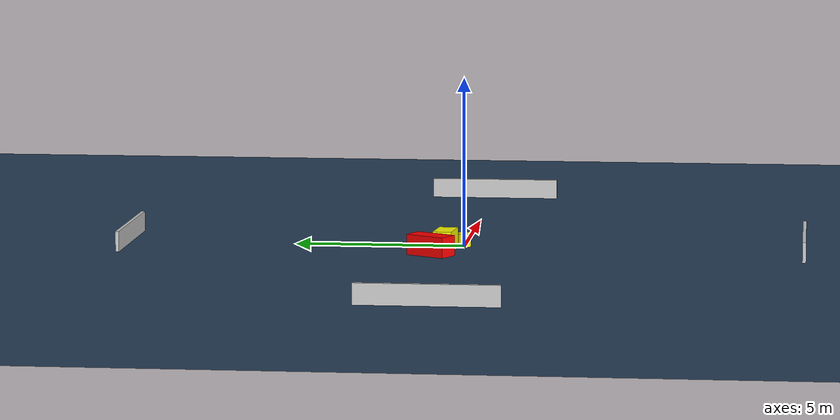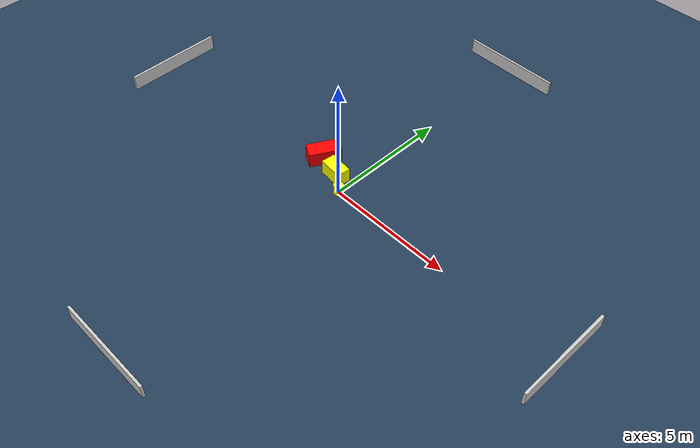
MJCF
<?xml version="1.0" ?>
<mujoco model="generated_environment">
  <option timestep="0.01" integrator="RK4" cone="elliptic"/>
  <default>
    <geom density="1"/>
  </default>
  <asset>
    <texture builtin="gradient" height="3072" name="skybox" rgb1="0.3 0.5 0.7" rgb2="0 0 0" type="skybox" width="512"/>
    <texture builtin="checker" height="300" name="groundplane" rgb1="0.2 0.3 0.4" rgb2="0.1 0.2 0.3" type="2d" width="300"/>
    <material name="groundplane" reflectance="0.2" texrepeat="5 5" texture="groundplane"/>
  </asset>
  <worldbody>
    <light dir="0 0 -1" directional="true" pos="0 0 1.5"/>
    <geom condim="3" friction="0.5 0.005 0.001" material="groundplane" name="floor" pos="0 0 0" size="0 0 0.05" type="plane"/>
    <body name="walls">
      <geom name="wall_1" condim="4" pos="-10.0 0.0 0.3" rgba="0.800000011920929 0.800000011920929 0.800000011920929 1.0" size="0.05 2.0 0.3" type="box"/>
      <geom name="wall_2" condim="4" pos="10.0 0.0 0.3" rgba="0.800000011920929 0.800000011920929 0.800000011920929 1.0" size="0.05 2.0 0.3" type="box"/>
      <geom name="wall_3" condim="4" pos="0.0 -10.0 0.3" rgba="0.800000011920929 0.800000011920929 0.800000011920929 1.0" size="2.0 0.05 0.3" type="box"/>
      <geom name="wall_4" condim="4" pos="0.0 10.0 0.3" rgba="0.800000011920929 0.800000011920929 0.800000011920929 1.0" size="2.0 0.05 0.3" type="box"/>
    </body>
    <body name="robot">
      <joint name="joint_x" type="slide" pos="0 0 0" axis="1 0 0"/>
      <joint name="joint_y" type="slide" pos="0 0 0" axis="0 1 0"/>
      <geom name="robot" type="cylinder" pos="0.0 0.0 0.2" size="0.2 0.2 0.0" mass="5.0" friction="1.0 0.005 0.0001" condim="4" rgba="1.0 1.0 0.0 1.0"/>
    </body>
    <body name="obstacle_1_movable">
      <geom name="obstacle_1_movable" condim="4" pos="-0.6556167652138165 0.4886625607033393 0.3" euler="0 0 353.8495763715417" friction="0.0 0.005 0.001" rgba="1.0 1.0 0.0 1.0" size="0.4806943510247477 0.2760141707695481 0.3" type="box" mass="0.1"/>
      <joint type="free"/>
    </body>
    <body name="obstacle_2_static">
      <geom name="obstacle_2_static" condim="4" pos="-1.6582161718289496 0.8186802253145475 0.3" euler="0 0 241.47044815502838" friction="0.0 0.005 0.001" rgba="1.0 0.0 0.0 1.0" size="0.6333097694889961 0.3107730796379038 0.3" type="box"/>
    </body>
  </worldbody>
  <actuator>
    <motor name="actuator_x" joint="joint_x" gear="1" ctrlrange="-1 1"/>
    <motor name="actuator_y" joint="joint_y" gear="1" ctrlrange="-1 1"/>
  </actuator>
</mujoco>
